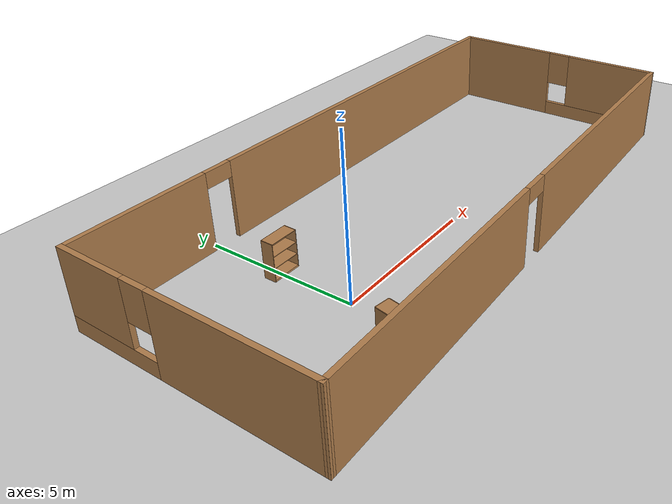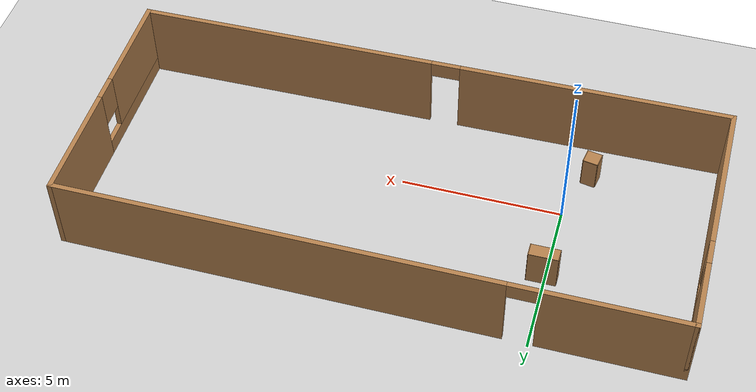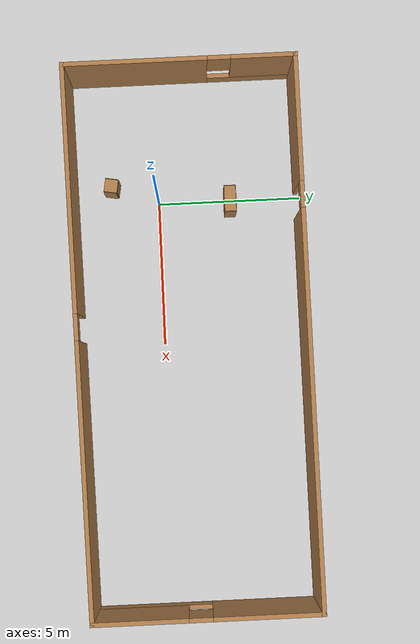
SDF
<sdf version="1.7">
 <world name="default">
  <light name="sun" type="directional">
   <pose>0 0 10 0 -0 0</pose>
   <diffuse>0.8 0.8 0.8 1</diffuse>
   <specular>0.2 0.2 0.2 1</specular>
   <attenuation>
    <range>1000</range>
    <constant>0.9</constant>
    <linear>0.01</linear>
    <quadratic>0.001</quadratic>
   </attenuation>
   <direction>-0.5 0.1 -0.9</direction>
   <spot><inner_angle>0</inner_angle><outer_angle>0</outer_angle><falloff>0</falloff></spot>
  </light>
  <model name="ground_plane">
   <static>1</static>
   <link name="link">
    <collision name="collision">
     <geometry><plane><normal>0 0 1</normal><size>100 100</size></plane></geometry>
     <surface><friction><ode><mu>100</mu><mu2>50</mu2></ode></friction></surface>
    </collision>
    <visual name="visual">
     <cast_shadows>0</cast_shadows>
     <geometry><plane><normal>0 0 1</normal><size>100 100</size></plane></geometry>
     <material>
      <script><uri>file://media/materials/scripts/gazebo.material</uri><name>Gazebo/Grey</name></script>
     </material>
    </visual>
   </link>
  </model>
  <gravity>0 0 -9.8</gravity>
  <magnetic_field>6e-06 2.3e-05 -4.2e-05</magnetic_field>
  <atmosphere type="adiabatic"/>
  <physics type="ode">
   <max_step_size>0.001</max_step_size>
   <real_time_factor>1</real_time_factor>
   <real_time_update_rate>1000</real_time_update_rate>
  </physics>
  <scene><ambient>0.4 0.4 0.4 1</ambient><background>0.7 0.7 0.7 1</background><shadows>1</shadows></scene>
  <audio><device>default</device></audio>
  <spherical_coordinates>
   <surface_model>EARTH_WGS84</surface_model>
   <latitude_deg>0</latitude_deg>
   <longitude_deg>0</longitude_deg>
   <elevation>0</elevation>
   <heading_deg>0</heading_deg>
  </spherical_coordinates>
  <model name="bookshelf">
   <static>1</static>
   <link name="link">
    <inertial><mass>1</mass></inertial>
    <collision name="back">
     <pose>0 0.005 0.6 0 -0 0</pose>
     <geometry><box><size>0.9 0.01 1.2</size></box></geometry>
    </collision>
    <visual name="visual1">
     <pose>0 0.005 0.6 0 -0 0</pose>
     <geometry><box><size>0.9 0.01 1.2</size></box></geometry>
     <material>
      <script><uri>file://media/materials/scripts/gazebo.material</uri><name>Gazebo/Wood</name></script>
     </material>
    </visual>
    <collision name="left_side">
     <pose>0.45 -0.195 0.6 0 -0 0</pose>
     <geometry><box><size>0.02 0.4 1.2</size></box></geometry>
    </collision>
    <visual name="visual2">
     <pose>0.45 -0.195 0.6 0 -0 0</pose>
     <geometry><box><size>0.02 0.4 1.2</size></box></geometry>
     <material>
      <script><uri>file://media/materials/scripts/gazebo.material</uri><name>Gazebo/Wood</name></script>
     </material>
    </visual>
    <collision name="right_side">
     <pose>-0.45 -0.195 0.6 0 -0 0</pose>
     <geometry><box><size>0.02 0.4 1.2</size></box></geometry>
    </collision>
    <visual name="visual3">
     <pose>-0.45 -0.195 0.6 0 -0 0</pose>
     <geometry><box><size>0.02 0.4 1.2</size></box></geometry>
     <material>
      <script><uri>file://media/materials/scripts/gazebo.material</uri><name>Gazebo/Wood</name></script>
     </material>
    </visual>
    <collision name="bottom">
     <pose>0 -0.195 0.03 0 -0 0</pose>
     <geometry><box><size>0.88 0.4 0.06</size></box></geometry>
    </collision>
    <visual name="visual4">
     <pose>0 -0.195 0.03 0 -0 0</pose>
     <geometry><box><size>0.88 0.4 0.06</size></box></geometry>
     <material>
      <script><uri>file://media/materials/scripts/gazebo.material</uri><name>Gazebo/Wood</name></script>
     </material>
    </visual>
    <collision name="top">
     <pose>0 -0.195 1.19 0 -0 0</pose>
     <geometry><box><size>0.88 0.4 0.02</size></box></geometry>
    </collision>
    <visual name="visual5">
     <pose>0 -0.195 1.19 0 -0 0</pose>
     <geometry><box><size>0.88 0.4 0.02</size></box></geometry>
     <material>
      <script><uri>file://media/materials/scripts/gazebo.material</uri><name>Gazebo/Wood</name></script>
     </material>
    </visual>
    <collision name="low_shelf">
     <pose>0 -0.195 0.43 0 -0 0</pose>
     <geometry><box><size>0.88 0.4 0.02</size></box></geometry>
    </collision>
    <visual name="visual6">
     <pose>0 -0.195 0.43 0 -0 0</pose>
     <geometry><box><size>0.88 0.4 0.02</size></box></geometry>
     <material>
      <script><uri>file://media/materials/scripts/gazebo.material</uri><name>Gazebo/Wood</name></script>
     </material>
    </visual>
    <collision name="high_shelf">
     <pose>0 -0.195 0.8 0 -0 0</pose>
     <geometry><box><size>0.88 0.4 0.02</size></box></geometry>
    </collision>
    <visual name="visual7">
     <pose>0 -0.195 0.8 0 -0 0</pose>
     <geometry><box><size>0.88 0.4 0.02</size></box></geometry>
     <material>
      <script><uri>file://media/materials/scripts/gazebo.material</uri><name>Gazebo/Wood</name></script>
     </material>
    </visual>
   </link>
   <pose>0.101763 2.69183 0 0 -0 0</pose>
  </model>
  <model name="cabinet">
   <static>1</static>
   <link name="cabinet_bottom_plate">
    <inertial>
     <pose>0 0 -1 0 -0 0</pose>
     <inertia><ixx>2.05</ixx><ixy>0</ixy><ixz>0</ixz><iyy>2.05</iyy><iyz>0</iyz><izz>2.05</izz></inertia>
     <mass>25</mass>
    </inertial>
    <collision name="cabinet_bottom_plate_geom">
     <pose>0 0 0.01 0 -0 0</pose>
     <geometry><box><size>0.45 0.45 0.02</size></box></geometry>
    </collision>
    <visual name="cabinet_bottom_plate_geom_visual">
     <pose>0 0 0.01 0 -0 0</pose>
     <geometry><box><size>0.45 0.45 0.02</size></box></geometry>
     <material>
      <script><uri>file://media/materials/scripts/gazebo.material</uri><name>Gazebo/Wood</name></script>
     </material>
    </visual>
    <collision name="cabinet_bottom_plate_geom_cabinet_back_plate">
     <pose>0.235 0 0.51 0 -0 0</pose>
     <geometry><box><size>0.02 0.45 1.02</size></box></geometry>
    </collision>
    <visual name="cabinet_bottom_plate_geom_cabinet_back_plate_visual">
     <pose>0.235 0 0.51 0 -0 0</pose>
     <geometry><box><size>0.02 0.45 1.02</size></box></geometry>
     <material>
      <script><uri>file://media/materials/scripts/gazebo.material</uri><name>Gazebo/Wood</name></script>
     </material>
    </visual>
    <collision name="cabinet_bottom_plate_geom_cabinet_left_plate">
     <pose>0 0.235 0.51 0 -0 0</pose>
     <geometry><box><size>0.45 0.02 1.02</size></box></geometry>
    </collision>
    <visual name="cabinet_bottom_plate_geom_cabinet_left_plate_visual">
     <pose>0 0.235 0.51 0 -0 0</pose>
     <geometry><box><size>0.45 0.02 1.02</size></box></geometry>
     <material>
      <script><uri>file://media/materials/scripts/gazebo.material</uri><name>Gazebo/Wood</name></script>
     </material>
    </visual>
    <collision name="cabinet_bottom_plate_geom_cabinet_middle_plate">
     <pose>0 0 0.51 0 -0 0</pose>
     <geometry><box><size>0.45 0.45 0.02</size></box></geometry>
    </collision>
    <visual name="cabinet_bottom_plate_geom_cabinet_middle_plate_visual">
     <pose>0 0 0.51 0 -0 0</pose>
     <geometry><box><size>0.45 0.45 0.02</size></box></geometry>
     <material>
      <script><uri>file://media/materials/scripts/gazebo.material</uri><name>Gazebo/Wood</name></script>
     </material>
    </visual>
    <collision name="cabinet_bottom_plate_geom_cabinet_right_plate">
     <pose>0 -0.235 0.51 0 -0 0</pose>
     <geometry><box><size>0.45 0.02 1.02</size></box></geometry>
    </collision>
    <visual name="cabinet_bottom_plate_geom_cabinet_right_plate_visual">
     <pose>0 -0.235 0.51 0 -0 0</pose>
     <geometry><box><size>0.45 0.02 1.02</size></box></geometry>
     <material>
      <script><uri>file://media/materials/scripts/gazebo.material</uri><name>Gazebo/Wood</name></script>
     </material>
    </visual>
    <collision name="cabinet_bottom_plate_geom_cabinet_top_plate">
     <pose>0 0 1.01 0 -0 0</pose>
     <geometry><box><size>0.45 0.45 0.02</size></box></geometry>
    </collision>
    <visual name="cabinet_bottom_plate_geom_cabinet_top_plate_visual">
     <pose>0 0 1.01 0 -0 0</pose>
     <geometry><box><size>0.45 0.45 0.02</size></box></geometry>
     <material>
      <script><uri>file://media/materials/scripts/gazebo.material</uri><name>Gazebo/Wood</name></script>
     </material>
    </visual>
   </link>
   <pose>-0.563715 -1.62199 0 0 -0 1.40258</pose>
  </model>
  <model name="test">
   <pose>4.86771 0.932351 0 0 -0 0</pose>
   <link name="Wall_1">
    <pose>-9.3 0.0005 0 0 -0 1.5708</pose>
    <visual name="Wall_1_Visual_0">
     <pose>-1.51993 0 1.25 0 -0 0</pose>
     <geometry><box><size>4.96014 0.15 2.5</size></box></geometry>
     <material>
      <script><uri>file://media/materials/scripts/gazebo.material</uri><name>Gazebo/Wood</name></script>
      <ambient>1 1 1 1</ambient>
     </material>
     <meta><layer>0</layer></meta>
    </visual>
    <collision name="Wall_1_Collision_0">
     <geometry><box><size>4.96014 0.15 2.5</size></box></geometry>
     <pose>-1.51993 0 1.25 0 -0 0</pose>
    </collision>
    <visual name="Wall_1_Visual_1">
     <pose>2.48007 0 0.25 0 -0 0</pose>
     <geometry><box><size>3.03986 0.15 0.5</size></box></geometry>
     <material>
      <script><uri>file://media/materials/scripts/gazebo.material</uri><name>Gazebo/Wood</name></script>
      <ambient>1 1 1 1</ambient>
     </material>
     <meta><layer>0</layer></meta>
    </visual>
    <collision name="Wall_1_Collision_1">
     <geometry><box><size>3.03986 0.15 0.5</size></box></geometry>
     <pose>2.48007 0 0.25 0 -0 0</pose>
    </collision>
    <visual name="Wall_1_Visual_2">
     <pose>2.88007 0 1.5 0 -0 0</pose>
     <geometry><box><size>2.23986 0.15 2</size></box></geometry>
     <material>
      <script><uri>file://media/materials/scripts/gazebo.material</uri><name>Gazebo/Wood</name></script>
      <ambient>1 1 1 1</ambient>
     </material>
     <meta><layer>0</layer></meta>
    </visual>
    <collision name="Wall_1_Collision_2">
     <geometry><box><size>2.23986 0.15 2</size></box></geometry>
     <pose>2.88007 0 1.5 0 -0 0</pose>
    </collision>
    <visual name="Wall_1_Visual_3">
     <pose>1.36014 0 1.9 0 -0 0</pose>
     <geometry><box><size>0.8 0.15 1.2</size></box></geometry>
     <material>
      <script><uri>file://media/materials/scripts/gazebo.material</uri><name>Gazebo/Wood</name></script>
      <ambient>1 1 1 1</ambient>
     </material>
     <meta><layer>0</layer></meta>
    </visual>
    <collision name="Wall_1_Collision_3">
     <geometry><box><size>0.8 0.15 1.2</size></box></geometry>
     <pose>1.36014 0 1.9 0 -0 0</pose>
    </collision>
   </link>
   <link name="Wall_3">
    <pose>0 3.9255 0 0 -0 0</pose>
    <visual name="Wall_3_Visual_0">
     <pose>-7.19265 0 1.25 0 -0 0</pose>
     <geometry><box><size>4.36471 0.15 2.5</size></box></geometry>
     <material>
      <script><uri>file://media/materials/scripts/gazebo.material</uri><name>Gazebo/Wood</name></script>
      <ambient>1 1 1 1</ambient>
     </material>
     <meta><layer>0</layer></meta>
    </visual>
    <collision name="Wall_3_Collision_0">
     <geometry><box><size>4.36471 0.15 2.5</size></box></geometry>
     <pose>-7.19265 0 1.25 0 -0 0</pose>
    </collision>
    <visual name="Wall_3_Visual_1">
     <pose>2.63235 0 1.25 0 -0 0</pose>
     <geometry><box><size>13.4853 0.15 2.5</size></box></geometry>
     <material>
      <script><uri>file://media/materials/scripts/gazebo.material</uri><name>Gazebo/Wood</name></script>
      <ambient>1 1 1 1</ambient>
     </material>
     <meta><layer>0</layer></meta>
    </visual>
    <collision name="Wall_3_Collision_1">
     <geometry><box><size>13.4853 0.15 2.5</size></box></geometry>
     <pose>2.63235 0 1.25 0 -0 0</pose>
    </collision>
    <visual name="Wall_3_Visual_2">
     <pose>-4.56029 0 2.25 0 -0 0</pose>
     <geometry><box><size>0.9 0.15 0.5</size></box></geometry>
     <material>
      <script><uri>file://media/materials/scripts/gazebo.material</uri><name>Gazebo/Wood</name></script>
      <ambient>1 1 1 1</ambient>
     </material>
     <meta><layer>0</layer></meta>
    </visual>
    <collision name="Wall_3_Collision_2">
     <geometry><box><size>0.9 0.15 0.5</size></box></geometry>
     <pose>-4.56029 0 2.25 0 -0 0</pose>
    </collision>
   </link>
   <link name="Wall_4">
    <pose>9.3 0.1255 0 0 -0 -1.5708</pose>
    <visual name="Wall_4_Visual_0">
     <pose>-2.02357 0 1.25 0 -0 0</pose>
     <geometry><box><size>3.70287 0.15 2.5</size></box></geometry>
     <material>
      <script><uri>file://media/materials/scripts/gazebo.material</uri><name>Gazebo/Wood</name></script>
      <ambient>1 1 1 1</ambient>
     </material>
     <meta><layer>0</layer></meta>
    </visual>
    <collision name="Wall_4_Collision_0">
     <geometry><box><size>3.70287 0.15 2.5</size></box></geometry>
     <pose>-2.02357 0 1.25 0 -0 0</pose>
    </collision>
    <visual name="Wall_4_Visual_1">
     <pose>1.85143 0 0.25 0 -0 0</pose>
     <geometry><box><size>4.04713 0.15 0.5</size></box></geometry>
     <material>
      <script><uri>file://media/materials/scripts/gazebo.material</uri><name>Gazebo/Wood</name></script>
      <ambient>1 1 1 1</ambient>
     </material>
     <meta><layer>0</layer></meta>
    </visual>
    <collision name="Wall_4_Collision_1">
     <geometry><box><size>4.04713 0.15 0.5</size></box></geometry>
     <pose>1.85143 0 0.25 0 -0 0</pose>
    </collision>
    <visual name="Wall_4_Visual_2">
     <pose>2.25143 0 1.5 0 -0 0</pose>
     <geometry><box><size>3.24713 0.15 2</size></box></geometry>
     <material>
      <script><uri>file://media/materials/scripts/gazebo.material</uri><name>Gazebo/Wood</name></script>
      <ambient>1 1 1 1</ambient>
     </material>
     <meta><layer>0</layer></meta>
    </visual>
    <collision name="Wall_4_Collision_2">
     <geometry><box><size>3.24713 0.15 2</size></box></geometry>
     <pose>2.25143 0 1.5 0 -0 0</pose>
    </collision>
    <visual name="Wall_4_Visual_3">
     <pose>0.22787 0 1.9 0 -0 0</pose>
     <geometry><box><size>0.8 0.15 1.2</size></box></geometry>
     <material>
      <script><uri>file://media/materials/scripts/gazebo.material</uri><name>Gazebo/Wood</name></script>
      <ambient>1 1 1 1</ambient>
     </material>
     <meta><layer>0</layer></meta>
    </visual>
    <collision name="Wall_4_Collision_3">
     <geometry><box><size>0.8 0.15 1.2</size></box></geometry>
     <pose>0.22787 0 1.9 0 -0 0</pose>
    </collision>
   </link>
   <link name="Wall_5">
    <pose>0 -3.7995 0 0 -0 -3.12815</pose>
    <visual name="Wall_5_Visual_0">
     <pose>-4.68137 0 1.25 0 -0 0</pose>
     <geometry><box><size>9.38895 0.15 2.5</size></box></geometry>
     <material>
      <script><uri>file://media/materials/scripts/gazebo.material</uri><name>Gazebo/Wood</name></script>
      <ambient>1 1 1 1</ambient>
     </material>
     <meta><layer>0</layer></meta>
    </visual>
    <collision name="Wall_5_Collision_0">
     <geometry><box><size>9.38895 0.15 2.5</size></box></geometry>
     <pose>-4.68137 0 1.25 0 -0 0</pose>
    </collision>
    <visual name="Wall_5_Visual_1">
     <pose>5.14447 0 1.25 0 -0 0</pose>
     <geometry><box><size>8.46273 0.15 2.5</size></box></geometry>
     <material>
      <script><uri>file://media/materials/scripts/gazebo.material</uri><name>Gazebo/Wood</name></script>
      <ambient>1 1 1 1</ambient>
     </material>
     <meta><layer>0</layer></meta>
    </visual>
    <collision name="Wall_5_Collision_1">
     <geometry><box><size>8.46273 0.15 2.5</size></box></geometry>
     <pose>5.14447 0 1.25 0 -0 0</pose>
    </collision>
    <visual name="Wall_5_Visual_2">
     <pose>0.46311 0 2.25 0 -0 0</pose>
     <geometry><box><size>0.9 0.15 0.5</size></box></geometry>
     <material>
      <script><uri>file://media/materials/scripts/gazebo.material</uri><name>Gazebo/Wood</name></script>
      <ambient>1 1 1 1</ambient>
     </material>
     <meta><layer>0</layer></meta>
    </visual>
    <collision name="Wall_5_Collision_2">
     <geometry><box><size>0.9 0.15 0.5</size></box></geometry>
     <pose>0.46311 0 2.25 0 -0 0</pose>
    </collision>
   </link>
   <static>1</static>
  </model>
 </world>
</sdf>
